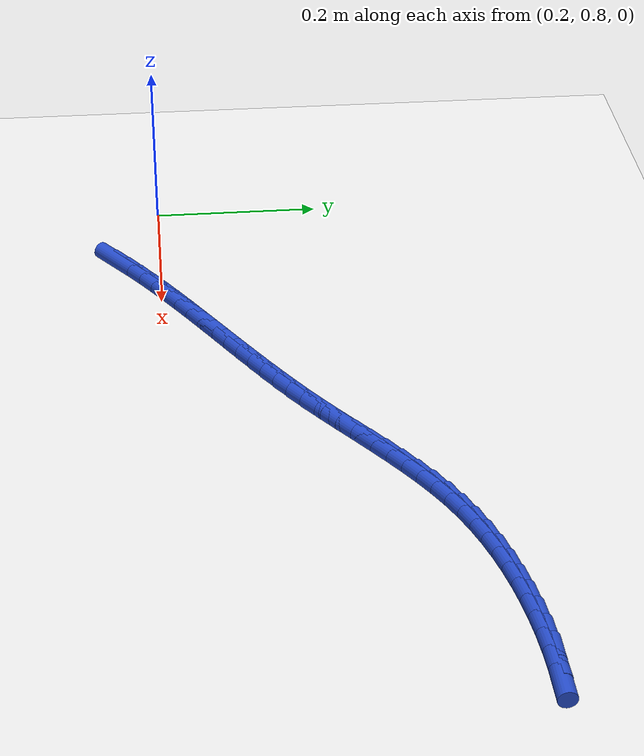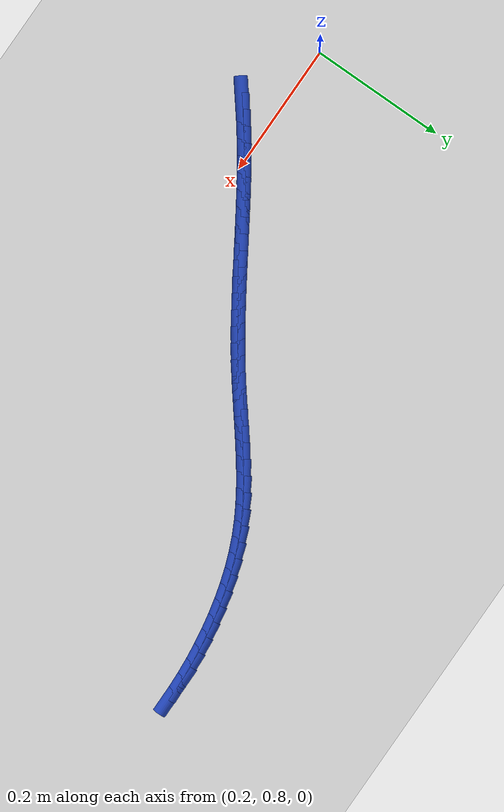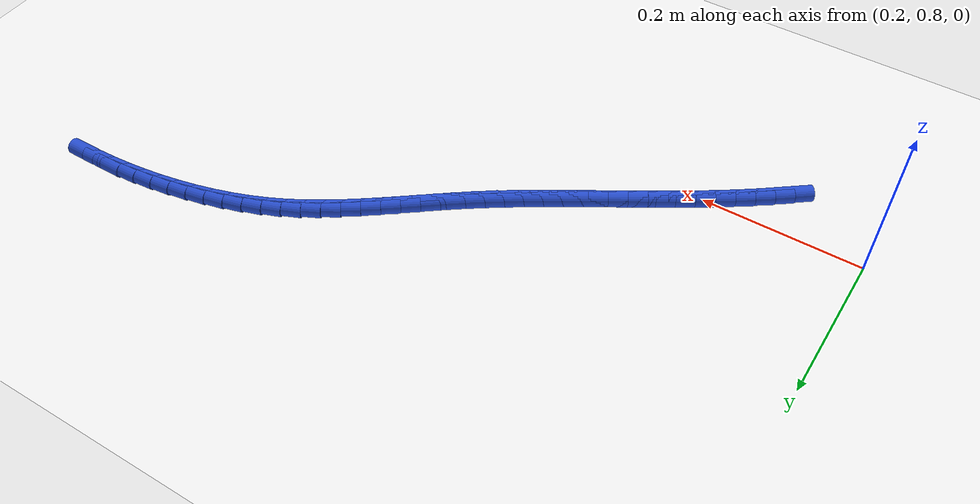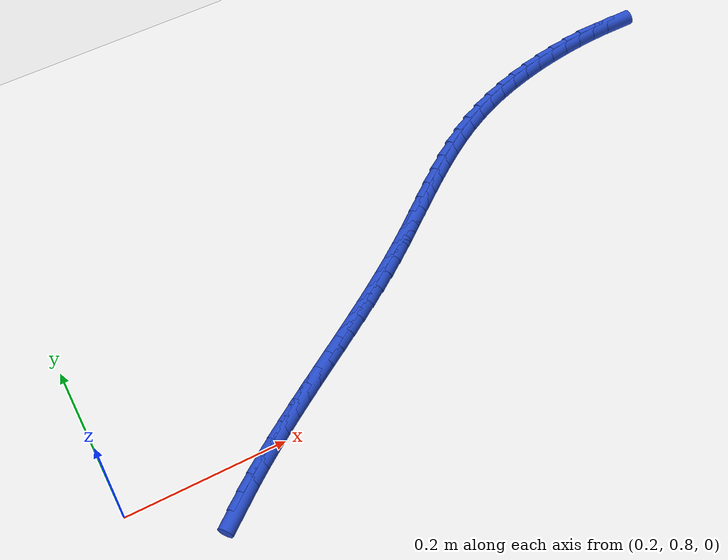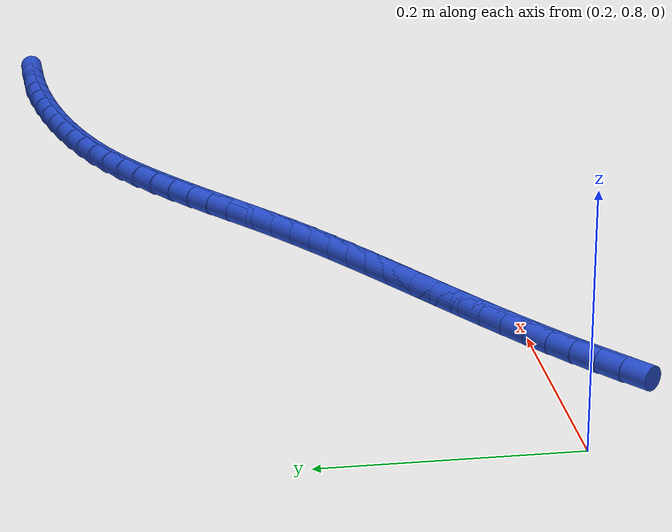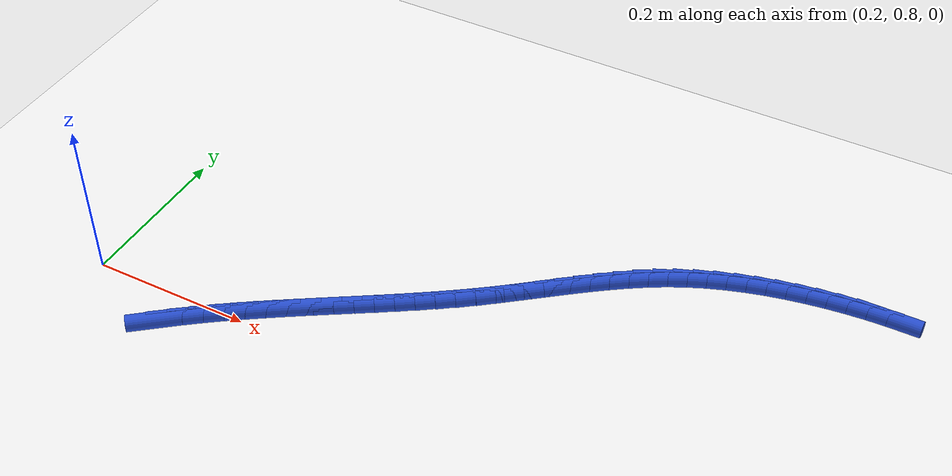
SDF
<sdf version="1.6">
 <world name="default">
  <model name="ground_plane">
   <static>1</static>
   <link name="link">
    <collision name="collision">
     <geometry><plane><normal>0 0 1</normal><size>100 100</size></plane></geometry>
     <surface><friction><ode><mu>100</mu><mu2>50</mu2></ode></friction></surface>
    </collision>
    <visual name="visual">
     <cast_shadows>0</cast_shadows>
     <geometry><plane><normal>0 0 1</normal><size>100 100</size></plane></geometry>
     <material>
      <script><uri>file://media/materials/scripts/gazebo.material</uri><name>Gazebo/WhiteGlow</name></script>
     </material>
    </visual>
   </link>
  </model>
  <model name="line">
   <link name="link_36">
    <pose>0.32365194573897776 0.7528237938316167 0.01 0 1.57 0.668946846342265</pose>
    <collision name="collision">
     <geometry><cylinder><radius>0.01</radius><length>0.08</length></cylinder></geometry>
    </collision>
    <visual name="visual">
     <material>
      <script><name>Gazebo/Blue</name><uri>file://media/materials/scripts/gazebo.material</uri></script>
     </material>
     <geometry><cylinder><radius>0.01</radius><length>0.08</length></cylinder></geometry>
    </visual>
   </link>
   <link name="link_37">
    <pose>0.3422453076008239 0.7675226165212613 0.01 0 1.57 0.6430005622383067</pose>
    <collision name="collision">
     <geometry><cylinder><radius>0.01</radius><length>0.08</length></cylinder></geometry>
    </collision>
    <visual name="visual">
     <material>
      <script><name>Gazebo/Blue</name><uri>file://media/materials/scripts/gazebo.material</uri></script>
     </material>
     <geometry><cylinder><radius>0.01</radius><length>0.08</length></cylinder></geometry>
    </visual>
   </link>
   <link name="link_38">
    <pose>0.36128261829093694 0.7817857159683524 0.01 0 1.57 0.6209135249268366</pose>
    <collision name="collision">
     <geometry><cylinder><radius>0.01</radius><length>0.08</length></cylinder></geometry>
    </collision>
    <visual name="visual">
     <material>
      <script><name>Gazebo/Blue</name><uri>file://media/materials/scripts/gazebo.material</uri></script>
     </material>
     <geometry><cylinder><radius>0.01</radius><length>0.08</length></cylinder></geometry>
    </visual>
   </link>
   <link name="link_39">
    <pose>0.38067320441584046 0.7956555894048418 0.01 0 1.57 0.6025491223568439</pose>
    <collision name="collision">
     <geometry><cylinder><radius>0.01</radius><length>0.08</length></cylinder></geometry>
    </collision>
    <visual name="visual">
     <material>
      <script><name>Gazebo/Blue</name><uri>file://media/materials/scripts/gazebo.material</uri></script>
     </material>
     <geometry><cylinder><radius>0.01</radius><length>0.08</length></cylinder></geometry>
    </visual>
   </link>
   <link name="link_40">
    <pose>0.4003263925820576 0.8091747340626807 0.01 0 1.57 0.587798938012503</pose>
    <collision name="collision">
     <geometry><cylinder><radius>0.01</radius><length>0.08</length></cylinder></geometry>
    </collision>
    <visual name="visual">
     <material>
      <script><name>Gazebo/Blue</name><uri>file://media/materials/scripts/gazebo.material</uri></script>
     </material>
     <geometry><cylinder><radius>0.01</radius><length>0.08</length></cylinder></geometry>
    </visual>
   </link>
   <link name="link_41">
    <pose>0.42015150939611146 0.8223856471738207 0.01 0 1.57 0.5765883842372478</pose>
    <collision name="collision">
     <geometry><cylinder><radius>0.01</radius><length>0.08</length></cylinder></geometry>
    </collision>
    <visual name="visual">
     <material>
      <script><name>Gazebo/Blue</name><uri>file://media/materials/scripts/gazebo.material</uri></script>
     </material>
     <geometry><cylinder><radius>0.01</radius><length>0.08</length></cylinder></geometry>
    </visual>
   </link>
   <link name="link_42">
    <pose>0.44005788146452557 0.8353308259702136 0.01 0 1.57 0.5688060805404918</pose>
    <collision name="collision">
     <geometry><cylinder><radius>0.01</radius><length>0.08</length></cylinder></geometry>
    </collision>
    <visual name="visual">
     <material>
      <script><name>Gazebo/Blue</name><uri>file://media/materials/scripts/gazebo.material</uri></script>
     </material>
     <geometry><cylinder><radius>0.01</radius><length>0.08</length></cylinder></geometry>
    </visual>
   </link>
   <link name="link_43">
    <pose>0.45996256871853025 0.8480556020987096 0.01 0 1.57 0.5640231631581542</pose>
    <collision name="collision">
     <geometry><cylinder><radius>0.01</radius><length>0.08</length></cylinder></geometry>
    </collision>
    <visual name="visual">
     <material>
      <script><name>Gazebo/Blue</name><uri>file://media/materials/scripts/gazebo.material</uri></script>
     </material>
     <geometry><cylinder><radius>0.01</radius><length>0.08</length></cylinder></geometry>
    </visual>
   </link>
   <link name="link_44">
    <pose>0.4798283466913867 0.860622062869267 0.01 0 1.57 0.5621269856889552</pose>
    <collision name="collision">
     <geometry><cylinder><radius>0.01</radius><length>0.08</length></cylinder></geometry>
    </collision>
    <visual name="visual">
     <material>
      <script><name>Gazebo/Blue</name><uri>file://media/materials/scripts/gazebo.material</uri></script>
     </material>
     <geometry><cylinder><radius>0.01</radius><length>0.08</length></cylinder></geometry>
    </visual>
   </link>
   <link name="link_45">
    <pose>0.49963472901391875 0.8730984304322789 0.01 0 1.57 0.5631585215495446</pose>
    <collision name="collision">
     <geometry><cylinder><radius>0.01</radius><length>0.08</length></cylinder></geometry>
    </collision>
    <visual name="visual">
     <material>
      <script><name>Gazebo/Blue</name><uri>file://media/materials/scripts/gazebo.material</uri></script>
     </material>
     <geometry><cylinder><radius>0.01</radius><length>0.08</length></cylinder></geometry>
    </visual>
   </link>
   <link name="link_46">
    <pose>0.5193612544176707 0.8855529361380439 0.01 0 1.57 0.5671451008149884</pose>
    <collision name="collision">
     <geometry><cylinder><radius>0.01</radius><length>0.08</length></cylinder></geometry>
    </collision>
    <visual name="visual">
     <material>
      <script><name>Gazebo/Blue</name><uri>file://media/materials/scripts/gazebo.material</uri></script>
     </material>
     <geometry><cylinder><radius>0.01</radius><length>0.08</length></cylinder></geometry>
    </visual>
   </link>
   <link name="link_47">
    <pose>0.538987461634187 0.8980538113368601 0.01 0 1.57 0.5740994297672182</pose>
    <collision name="collision">
     <geometry><cylinder><radius>0.01</radius><length>0.08</length></cylinder></geometry>
    </collision>
    <visual name="visual">
     <material>
      <script><name>Gazebo/Blue</name><uri>file://media/materials/scripts/gazebo.material</uri></script>
     </material>
     <geometry><cylinder><radius>0.01</radius><length>0.08</length></cylinder></geometry>
    </visual>
   </link>
   <link name="link_48">
    <pose>0.5584928893950118 0.9106692873790263 0.01 0 1.57 0.5840182460591699</pose>
    <collision name="collision">
     <geometry><cylinder><radius>0.01</radius><length>0.08</length></cylinder></geometry>
    </collision>
    <visual name="visual">
     <material>
      <script><name>Gazebo/Blue</name><uri>file://media/materials/scripts/gazebo.material</uri></script>
     </material>
     <geometry><cylinder><radius>0.01</radius><length>0.08</length></cylinder></geometry>
    </visual>
   </link>
   <link name="link_49">
    <pose>0.5778570764316895 0.9234675956148408 0.01 0 1.57 0.5968803896489623</pose>
    <collision name="collision">
     <geometry><cylinder><radius>0.01</radius><length>0.08</length></cylinder></geometry>
    </collision>
    <visual name="visual">
     <material>
      <script><name>Gazebo/Blue</name><uri>file://media/materials/scripts/gazebo.material</uri></script>
     </material>
     <geometry><cylinder><radius>0.01</radius><length>0.08</length></cylinder></geometry>
    </visual>
   </link>
   <link name="link_50">
    <pose>0.5970595614757639 0.9365169673946019 0.01 0 1.57 0.6126443735051876</pose>
    <collision name="collision">
     <geometry><cylinder><radius>0.01</radius><length>0.08</length></cylinder></geometry>
    </collision>
    <visual name="visual">
     <material>
      <script><name>Gazebo/Blue</name><uri>file://media/materials/scripts/gazebo.material</uri></script>
     </material>
     <geometry><cylinder><radius>0.01</radius><length>0.08</length></cylinder></geometry>
    </visual>
   </link>
   <link name="link_51">
    <pose>0.6160798832587795 0.9498856340686082 0.01 0 1.57 0.63124560575637</pose>
    <collision name="collision">
     <geometry><cylinder><radius>0.01</radius><length>0.08</length></cylinder></geometry>
    </collision>
    <visual name="visual">
     <material>
      <script><name>Gazebo/Blue</name><uri>file://media/materials/scripts/gazebo.material</uri></script>
     </material>
     <geometry><cylinder><radius>0.01</radius><length>0.08</length></cylinder></geometry>
    </visual>
   </link>
   <link name="link_52">
    <pose>0.6348975805122806 0.9636418269871582 0.01 0 1.57 0.6507751650396512</pose>
    <collision name="collision">
     <geometry><cylinder><radius>0.01</radius><length>0.08</length></cylinder></geometry>
    </collision>
    <visual name="visual">
     <material>
      <script><name>Gazebo/Blue</name><uri>file://media/materials/scripts/gazebo.material</uri></script>
     </material>
     <geometry><cylinder><radius>0.01</radius><length>0.08</length></cylinder></geometry>
    </visual>
   </link>
   <link name="link_53">
    <pose>0.6535102891567073 0.9778140693779296 0.01 0 1.57 0.6638762733937609</pose>
    <collision name="collision">
     <geometry><cylinder><radius>0.01</radius><length>0.08</length></cylinder></geometry>
    </collision>
    <visual name="visual">
     <material>
      <script><name>Gazebo/Blue</name><uri>file://media/materials/scripts/gazebo.material</uri></script>
     </material>
     <geometry><cylinder><radius>0.01</radius><length>0.08</length></cylinder></geometry>
    </visual>
   </link>
   <link name="link_54">
    <pose>0.6719887730205872 0.9922704301594752 0.01 0 1.57 0.6687994790913384</pose>
    <collision name="collision">
     <geometry><cylinder><radius>0.01</radius><length>0.08</length></cylinder></geometry>
    </collision>
    <visual name="visual">
     <material>
      <script><name>Gazebo/Blue</name><uri>file://media/materials/scripts/gazebo.material</uri></script>
     </material>
     <geometry><cylinder><radius>0.01</radius><length>0.08</length></cylinder></geometry>
    </visual>
   </link>
   <link name="link_55">
    <pose>0.690422264580532 1.0068384550869462 0.01 0 1.57 0.6656016224878809</pose>
    <collision name="collision">
     <geometry><cylinder><radius>0.01</radius><length>0.08</length></cylinder></geometry>
    </collision>
    <visual name="visual">
     <material>
      <script><name>Gazebo/Blue</name><uri>file://media/materials/scripts/gazebo.material</uri></script>
     </material>
     <geometry><cylinder><radius>0.01</radius><length>0.08</length></cylinder></geometry>
    </visual>
   </link>
   <link name="link_56">
    <pose>0.7088999963138635 1.0213456899139362 0.01 0 1.57 0.6542654524097217</pose>
    <collision name="collision">
     <geometry><cylinder><radius>0.01</radius><length>0.08</length></cylinder></geometry>
    </collision>
    <visual name="visual">
     <material>
      <script><name>Gazebo/Blue</name><uri>file://media/materials/scripts/gazebo.material</uri></script>
     </material>
     <geometry><cylinder><radius>0.01</radius><length>0.08</length></cylinder></geometry>
    </visual>
   </link>
   <link name="link_57">
    <pose>0.7275112006979023 1.0356196803940385 0.01 0 1.57 0.634705744093836</pose>
    <collision name="collision">
     <geometry><cylinder><radius>0.01</radius><length>0.08</length></cylinder></geometry>
    </collision>
    <visual name="visual">
     <material>
      <script><name>Gazebo/Blue</name><uri>file://media/materials/scripts/gazebo.material</uri></script>
     </material>
     <geometry><cylinder><radius>0.01</radius><length>0.08</length></cylinder></geometry>
    </visual>
   </link>
   <link name="link_58">
    <pose>0.7463451102099701 1.0494879722808468 0.01 0 1.57 0.6067907267437276</pose>
    <collision name="collision">
     <geometry><cylinder><radius>0.01</radius><length>0.08</length></cylinder></geometry>
    </collision>
    <visual name="visual">
     <material>
      <script><name>Gazebo/Blue</name><uri>file://media/materials/scripts/gazebo.material</uri></script>
     </material>
     <geometry><cylinder><radius>0.01</radius><length>0.08</length></cylinder></geometry>
    </visual>
   </link>
   <link name="link_59">
    <pose>0.7654909573273879 1.0627781113279535 0.01 0 1.57 0.5703809628463034</pose>
    <collision name="collision">
     <geometry><cylinder><radius>0.01</radius><length>0.08</length></cylinder></geometry>
    </collision>
    <visual name="visual">
     <material>
      <script><name>Gazebo/Blue</name><uri>file://media/materials/scripts/gazebo.material</uri></script>
     </material>
     <geometry><cylinder><radius>0.01</radius><length>0.08</length></cylinder></geometry>
    </visual>
   </link>
   <link name="link_60">
    <pose>0.7850379745274775 1.0753176432889537 0.01 0 1.57 0.5253883561052721</pose>
    <collision name="collision">
     <geometry><cylinder><radius>0.01</radius><length>0.08</length></cylinder></geometry>
    </collision>
    <visual name="visual">
     <material>
      <script><name>Gazebo/Blue</name><uri>file://media/materials/scripts/gazebo.material</uri></script>
     </material>
     <geometry><cylinder><radius>0.01</radius><length>0.08</length></cylinder></geometry>
    </visual>
   </link>
   <link name="link_61">
    <pose>0.8050753942875601 1.08693411391744 0.01 0 1.57 0.47203093881704056</pose>
    <collision name="collision">
     <geometry><cylinder><radius>0.01</radius><length>0.08</length></cylinder></geometry>
    </collision>
    <visual name="visual">
     <material>
      <script><name>Gazebo/Blue</name><uri>file://media/materials/scripts/gazebo.material</uri></script>
     </material>
     <geometry><cylinder><radius>0.01</radius><length>0.08</length></cylinder></geometry>
    </visual>
   </link>
   <link name="link_62">
    <pose>0.8256902185933533 1.0974584665835798 0.01 0 1.57 0.4158006331303245</pose>
    <collision name="collision">
     <geometry><cylinder><radius>0.01</radius><length>0.08</length></cylinder></geometry>
    </collision>
    <visual name="visual">
     <material>
      <script><name>Gazebo/Blue</name><uri>file://media/materials/scripts/gazebo.material</uri></script>
     </material>
     <geometry><cylinder><radius>0.01</radius><length>0.08</length></cylinder></geometry>
    </visual>
   </link>
   <link name="link_63">
    <pose>0.8469019809973135 1.1068244165607253 0.01 0 1.57 0.3629378963648534</pose>
    <collision name="collision">
     <geometry><cylinder><radius>0.01</radius><length>0.08</length></cylinder></geometry>
    </collision>
    <visual name="visual">
     <material>
      <script><name>Gazebo/Blue</name><uri>file://media/materials/scripts/gazebo.material</uri></script>
     </material>
     <geometry><cylinder><radius>0.01</radius><length>0.08</length></cylinder></geometry>
    </visual>
   </link>
   <link name="link_64">
    <pose>0.8686523161829901 1.1150843392811527 0.01 0 1.57 0.3137983563629217</pose>
    <collision name="collision">
     <geometry><cylinder><radius>0.01</radius><length>0.08</length></cylinder></geometry>
    </collision>
    <visual name="visual">
     <material>
      <script><name>Gazebo/Blue</name><uri>file://media/materials/scripts/gazebo.material</uri></script>
     </material>
     <geometry><cylinder><radius>0.01</radius><length>0.08</length></cylinder></geometry>
    </visual>
   </link>
   <link name="link_65">
    <pose>0.8908785287324718 1.1222972060434786 0.01 0 1.57 0.26832303508822736</pose>
    <collision name="collision">
     <geometry><cylinder><radius>0.01</radius><length>0.08</length></cylinder></geometry>
    </collision>
    <visual name="visual">
     <material>
      <script><name>Gazebo/Blue</name><uri>file://media/materials/scripts/gazebo.material</uri></script>
     </material>
     <geometry><cylinder><radius>0.01</radius><length>0.08</length></cylinder></geometry>
    </visual>
   </link>
   <link name="link_66">
    <pose>0.9135179232278486 1.1285219881463218 0.01 0 1.57 0.22639869798866794</pose>
    <collision name="collision">
     <geometry><cylinder><radius>0.01</radius><length>0.08</length></cylinder></geometry>
    </collision>
    <visual name="visual">
     <material>
      <script><name>Gazebo/Blue</name><uri>file://media/materials/scripts/gazebo.material</uri></script>
     </material>
     <geometry><cylinder><radius>0.01</radius><length>0.08</length></cylinder></geometry>
    </visual>
   </link>
   <link name="link_67">
    <pose>0.936507804251209 1.1338176568882987 0.01 0 1.57 0.18787665477764348</pose>
    <collision name="collision">
     <geometry><cylinder><radius>0.01</radius><length>0.08</length></cylinder></geometry>
    </collision>
    <visual name="visual">
     <material>
      <script><name>Gazebo/Blue</name><uri>file://media/materials/scripts/gazebo.material</uri></script>
     </material>
     <geometry><cylinder><radius>0.01</radius><length>0.08</length></cylinder></geometry>
    </visual>
   </link>
   <link name="link_68">
    <pose>0.9597854765928584 1.1382431812270104 0.01 0 1.57 0.151939371677457</pose>
    <collision name="collision">
     <geometry><cylinder><radius>0.01</radius><length>0.08</length></cylinder></geometry>
    </collision>
    <visual name="visual">
     <material>
      <script><name>Gazebo/Blue</name><uri>file://media/materials/scripts/gazebo.material</uri></script>
     </material>
     <geometry><cylinder><radius>0.01</radius><length>0.08</length></cylinder></geometry>
    </visual>
   </link>
   <link name="link_69">
    <pose>0.983289615424861 1.1418421225704836 0.01 0 1.57 0.11622041618310598</pose>
    <collision name="collision">
     <geometry><cylinder><radius>0.01</radius><length>0.08</length></cylinder></geometry>
    </collision>
    <visual name="visual">
     <material>
      <script><name>Gazebo/Blue</name><uri>file://media/materials/scripts/gazebo.material</uri></script>
     </material>
     <geometry><cylinder><radius>0.01</radius><length>0.08</length></cylinder></geometry>
    </visual>
   </link>
   <link name="link_70">
    <pose>1.0069635273815714 1.1446059696219801 0.01 0 1.57 0.08008954982298973</pose>
    <collision name="collision">
     <geometry><cylinder><radius>0.01</radius><length>0.08</length></cylinder></geometry>
    </collision>
    <visual name="visual">
     <material>
      <script><name>Gazebo/Blue</name><uri>file://media/materials/scripts/gazebo.material</uri></script>
     </material>
     <geometry><cylinder><radius>0.01</radius><length>0.08</length></cylinder></geometry>
    </visual>
   </link>
   <link name="link_71">
    <pose>1.0307514965528453 1.1465152213047434 0.01 0 1.57 0.04338221477648475</pose>
    <collision name="collision">
     <geometry><cylinder><radius>0.01</radius><length>0.08</length></cylinder></geometry>
    </collision>
    <visual name="visual">
     <material>
      <script><name>Gazebo/Blue</name><uri>file://media/materials/scripts/gazebo.material</uri></script>
     </material>
     <geometry><cylinder><radius>0.01</radius><length>0.08</length></cylinder></geometry>
    </visual>
   </link>
   <link name="link_72">
    <pose>1.0545978070285376 1.1475503765420183 0.01 0 1.57 0.005935529090897447</pose>
    <collision name="collision">
     <geometry><cylinder><radius>0.01</radius><length>0.08</length></cylinder></geometry>
    </collision>
    <visual name="visual">
     <material>
      <script><name>Gazebo/Blue</name><uri>file://media/materials/scripts/gazebo.material</uri></script>
     </material>
     <geometry><cylinder><radius>0.01</radius><length>0.08</length></cylinder></geometry>
    </visual>
   </link>
  </model>
 </world>
</sdf>
